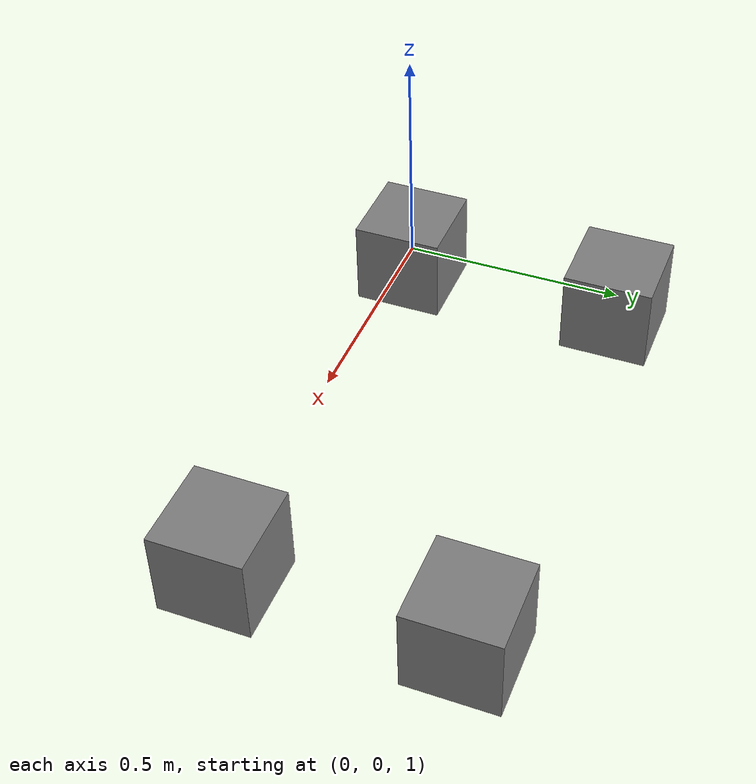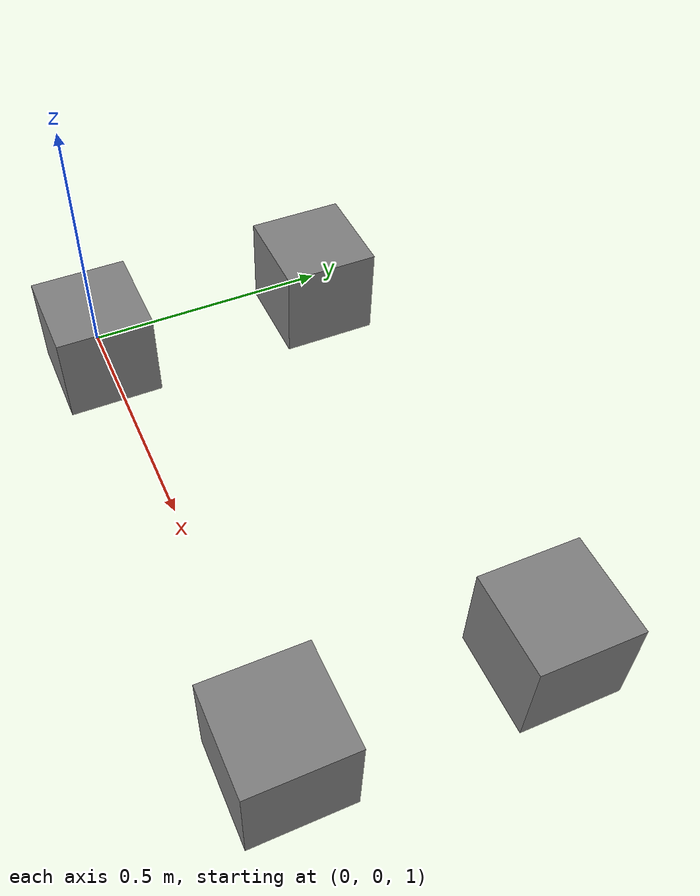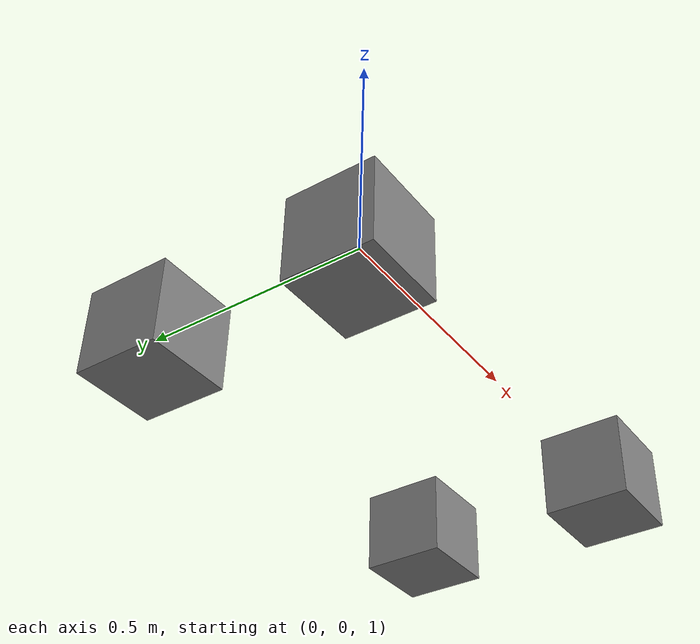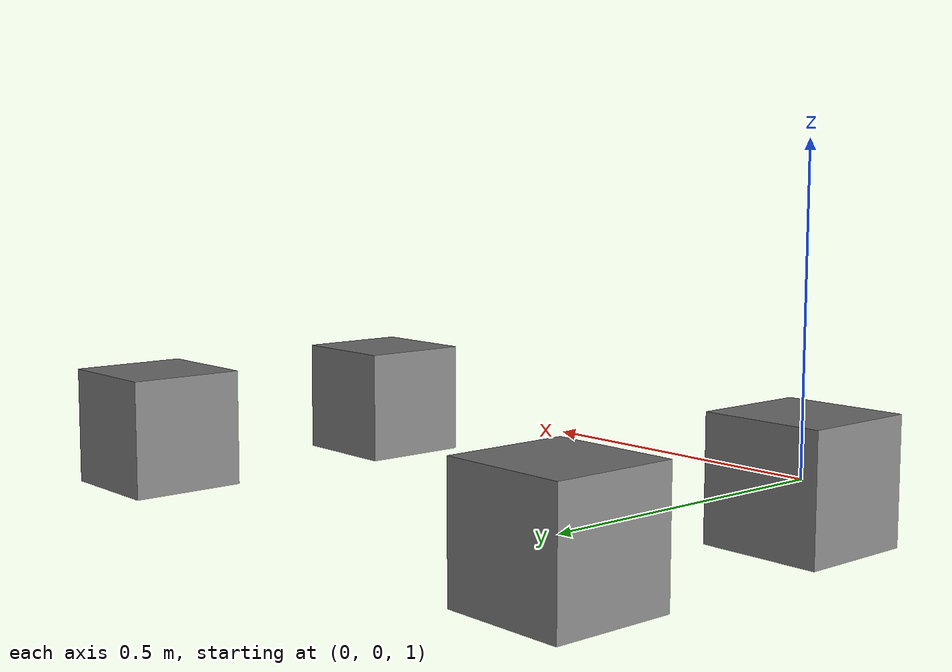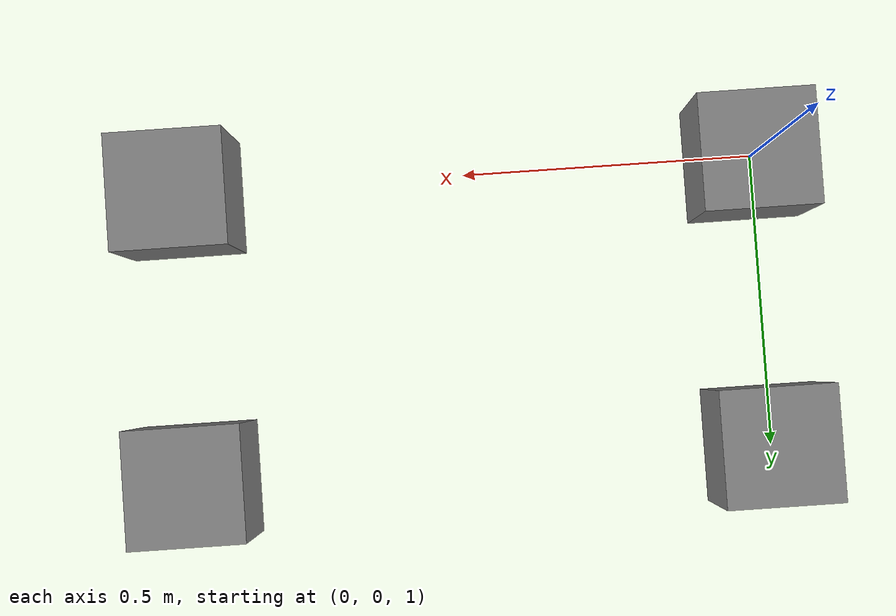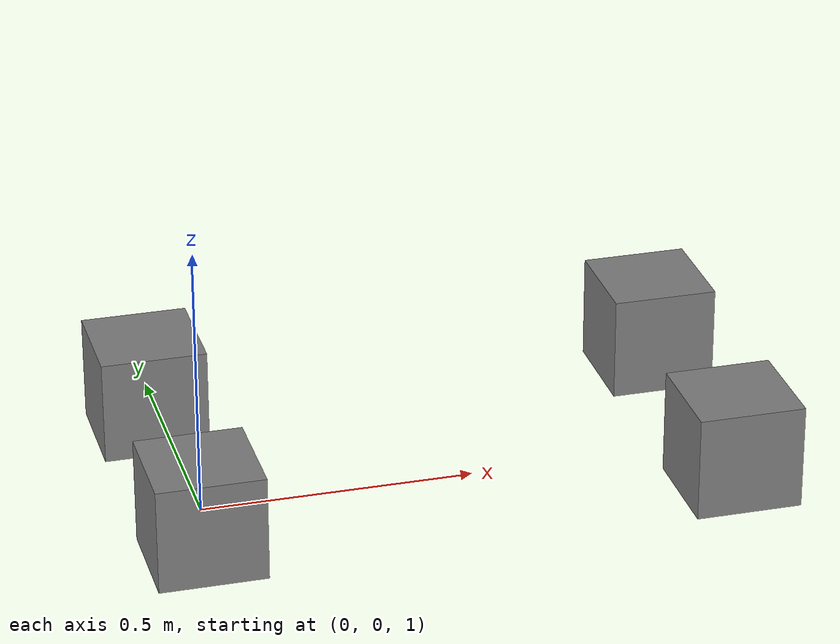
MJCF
<mujoco model="fixed_vs_free_joints">
    <worldbody>
        <!-- Scenario 1: Fixed Joint -->
        <!-- body2 is welded to body1 because there's no explicit joint element -->
        <body name="body1" pos="0 0 1">
            <geom type="box" size="0.1 0.1 0.1"/>
            <body name="body2" pos="0 0.5 0" euler="0 0 90">
                <geom type="box" size="0.1 0.1 0.1"/>
            </body>
        </body>

        <!-- Scenario 2: Free Joint -->
        <!-- body4 has a free joint, so no UsdPhysics.Joint should be authored -->
        <body name="body3" pos="1 0 1">
            <freejoint name="freejoint"/>
            <geom type="box" size="0.1 0.1 0.1"/>
            <body name="body4" pos="0 0.5 0">
                <geom type="box" size="0.1 0.1 0.1"/>
            </body>
        </body>
    </worldbody>
</mujoco>
